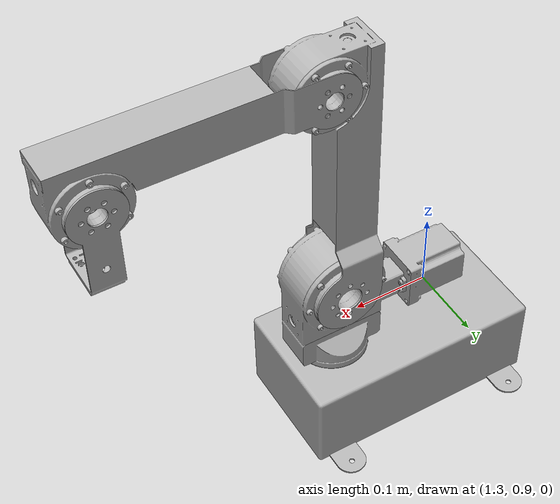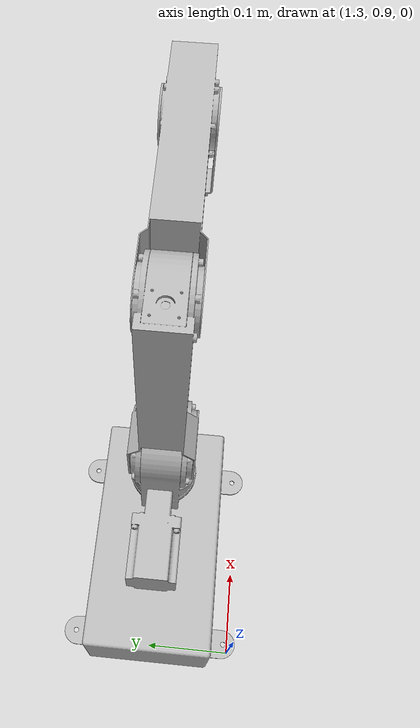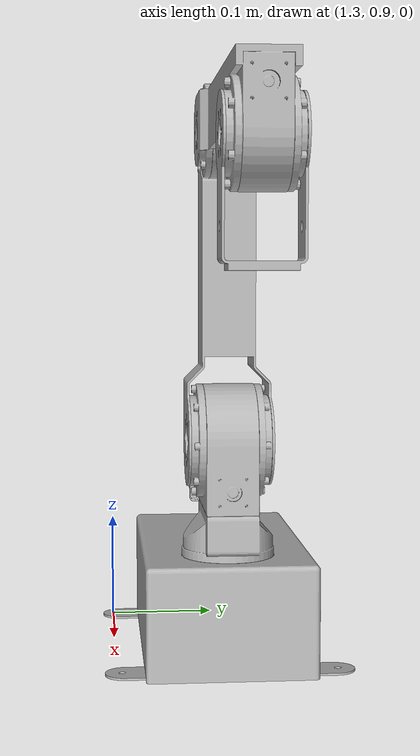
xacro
<?xml version="1.0"?>
<robot xmlns:xacro="http://www.ros.org/wiki/xacro"  name="robot">

    <!-- This is an example of a URDF. -->
    <!-- As we move through the file, new things to note will be pointed out. -->
    <!-- It's not meant an example of GOOD design, but an example of some of the various features of URDF/xacro. -->

    <!-- This will include all the contents of example_include.xacro first. Go check it out! -->
    <xacro:include filename="example_include.xacro" />
    <xacro:include filename="materials.xacro" />
    <xacro:include filename="PutArmiurdf.trans" />

    <!-- This first link called "world" is empty -->
    <link name="world"></link>

    <!-- A simple fixed joint from our empty world link, to our base. -->
    <!-- The base origin is offset from the world origin. -->
    <joint name="base_joint" type="fixed">
        <origin xyz="1.5 1.0 0" rpy="0 0 0"/>
        <parent link="world"/>
        <child link="base_link"/>
    </joint>

    <!-- base_link is a large rectangular plate. Some things to note: -->
    <!-- - We set the visual origin Z to half the box height, so that the link origin sits at the bottom of the box -->
    <!-- - We set the collision to be identical to the visual -->
    <!-- - We specified the colour manually (but still need to enter a name) -->
    <!-- - We specified all the inertial parameters manually -->
    <link name="base_link">
    <inertial>
        <origin xyz="-0.09564368830443622 0.0012112707272121106 0.05097667978773091" rpy="0 0 0"/>
        <mass value="27.331661890168725"/>
        <inertia ixx="0.076348" iyy="0.188917" izz="0.220203" ixy="-0.003157" iyz="-0.000445" ixz="-0.004204"/>
    </inertial>
    <visual>
        <origin xyz="0 0 0" rpy="0 0 0"/>
        <geometry>
        <mesh filename="package://urdf_example/meshes/base_link.stl" scale="0.001 0.001 0.001"/>
        </geometry>
        <material name="silver"/>
    </visual>
    <collision>
        <origin xyz="0 0 0" rpy="0 0 0"/>
        <geometry>
        <mesh filename="package://urdf_example/meshes/base_link.stl" scale="0.001 0.001 0.001"/>
        </geometry>
    </collision>
    </link>

    <!-- slider_joint lets slider_link move back and forth along the top of the base in one dimension.  -->
    <!-- - Origin is set to one of the top edges of the base_link box, so that our link skims across the top  -->
    <!-- - It moves along the X axis -->
    <!-- - We need to specify limits for the motion -->
    <joint name="slider_joint" type="continuous">
        <origin xyz="0.0 0.0 0.099" rpy="0 0 0"/>
        <parent link="base_link"/>
        <child link="slider_link"/>
        <axis xyz="0.0 0.0 -1.0"/>
    </joint>

    <!-- slider_link is the box skimming across the top of the base. Its parameters are similar to the base_link, however: -->
    <!-- - Instead of explicitly describing a colour, it uses the named material "blue". It knows about "blue" that material was included in example_include.xacro. -->
    <!-- - Instead of explicitly describing the inertia, we use a macro that was defined in the example_include.xacro -->

    <link name="slider_link">
    <inertial>
        <origin xyz="-0.026153794282260473 0.000241561861043143 0.0712127331449195" rpy="0 0 0"/>
        <mass value="7.902676304338557"/>
        <inertia ixx="0.013853" iyy="0.035493" izz="0.026352" ixy="2e-06" iyz="-4e-06" ixz="-0.001749"/>
    </inertial>
    <visual>
        <origin xyz="-0.0 -0.0 -0.099" rpy="0 0 0"/>
        <geometry>
        <mesh filename="package://urdf_example/meshes/1_AXIS_1_1.stl" scale="0.001 0.001 0.001"/>
        </geometry>
        <material name="silver"/>
    </visual>
    <collision>
        <origin xyz="-0.0 -0.0 -0.099" rpy="0 0 0"/>
        <geometry>
        <mesh filename="package://urdf_example/meshes/1_AXIS_1_1.stl" scale="0.001 0.001 0.001"/>
        </geometry>
    </collision>
    </link>

    <!-- arm_joint describes the rotation of the arm and is centred around the top corner of the slider box. -->
    <!-- - The axis of rotation is -1 in Y, so that positive is "up" -->
    <!-- - The upper limit uses xacro's mathematical features -->
    <joint name="arm_joint" type="continuous">
        <origin xyz="0.0 0.035 0.10275" rpy="0 0 0"/>
        <parent link="slider_link"/>
        <child link="arm_link"/>
        <axis xyz="0.0 1.0 0.0"/>
    </joint>

    <!-- arm_link describes the arm -->
    <!-- - We use the "property" feature to define the arm length and radius and use them multiple times -->
    <!-- - The visual/collision origin is set to halfway along the length (similar to the box), but also with a rotation (again using the mathematical features). -->
    <!--   This is because the cylinder extends along the Z axis by default, but we want it to be along the X axis (when the joint is at 0) -->

    <xacro:property name="arm_length" value="1" />
    <xacro:property name="arm_radius" value="0.1" />
    <link name="arm_link">
    <inertial>
        <origin xyz="-0.005668936335802665 -0.03475000001361264 0.2003768902953659" rpy="0 0 0"/>
        <mass value="5.606060961398385"/>
        <inertia ixx="0.033851" iyy="0.035534" izz="0.004268" ixy="0.0" iyz="0.0" ixz="-0.003135"/>
    </inertial>
    <visual>
        <origin xyz="-0.0 -0.035 -0.20175" rpy="0 0 0"/>
        <geometry>
        <mesh filename="package://urdf_example/meshes/2_AXIS_2_1.stl" scale="0.001 0.001 0.001"/>
        </geometry>
        <material name="silver"/>
    </visual>
    <collision>
        <origin xyz="-0.0 -0.035 -0.20175" rpy="0 0 0"/>
        <geometry>
        <mesh filename="package://urdf_example/meshes/2_AXIS_2_1.stl" scale="0.001 0.001 0.001"/>
        </geometry>
    </collision>
    </link>

    <!-- camera_joint describes where the camera is relative to the arm -->
    <!-- - Even though the camera isn't moving relative to the arm, it will probably be helpful to have its own link/frame rather than just adding more visuals to the arm -->
    <!-- - For this example, the camera_link origin will be at the centre of the camera's "sensor" -->
    <joint name="camera_joint" type="continuous">
        <origin xyz="0.01625 -0.00675 0.26953" rpy="0 0 0"/>
        <parent link="arm_link"/>
        <child link="camera_link"/>
        <axis xyz="-0.0 -1.0 -0.0"/>
    </joint>

    <!-- camera_link describes the camera at the end of the arm -->
    <!-- - It has multiple visual elements, which ultimately get combined together -->
    <!-- - Even if we specify different materials, RViz will just colour them all the same as the first -->
    <!-- - Although we could also specify multiple collision geometries, instead we just use a single box that encompasses the whole camera -->
    <link name="camera_link">
        <inertial>
            <origin xyz="0.18159959562223355 -0.02800000031186445 -0.004785398729074464" rpy="0 0 0"/>
            <mass value="5.029257545475572"/>
            <inertia ixx="0.003664" iyy="0.024688" izz="0.022977" ixy="0.0" iyz="-0.0" ixz="0.002776"/>
        </inertial>
        <visual>
            <origin xyz="-0.01625 -0.02825 -0.47128" rpy="0 0 0"/>
            <geometry>
                <mesh filename="package://urdf_example/meshes/3_AXIS_3_1.stl" scale="0.001 0.001 0.001"/>
            </geometry>
            <material name="silver"/>
        </visual>
        <collision>
            <origin xyz="-0.01625 -0.02825 -0.47128" rpy="0 0 0"/>
            <geometry>
                <mesh filename="package://urdf_example/meshes/3_AXIS_3_1.stl" scale="0.001 0.001 0.001"/>
            </geometry>
        </collision>
    </link>

    <xacro:include filename="example_gazebo.xacro" />

    <joint name="Revolute 4" type="continuous">
        <origin xyz="0.23869 0.0 -0.02525" rpy="0 0 0"/>
        <parent link="camera_link"/>
        <child link="4_AXIS_4_1"/>
        <axis xyz="0.0 1.0 0.0"/>
    </joint>

    <link name="4_AXIS_4_1">
        <inertial>
            <origin xyz="4.5630166312093934e-14 -0.028000000019999895 -0.04743354311576614" rpy="0 0 0"/>
            <mass value="0.20316593653715326"/>
            <inertia ixx="0.000474" iyy="0.000374" izz="0.000167" ixy="-0.0" iyz="0.0" ixz="0.0"/>
        </inertial>
        <visual>
            <origin xyz="-0.25494 -0.02825 -0.44603" rpy="0 0 0"/>
            <geometry>
                <mesh filename="package://urdf_example/meshes/4_AXIS_4_1.stl" scale="0.001 0.001 0.001"/>
            </geometry>
            <material name="silver"/>
        </visual>
        <collision>
            <origin xyz="-0.25494 -0.02825 -0.44603" rpy="0 0 0"/>
            <geometry>
                <mesh filename="package://urdf_example/meshes/4_AXIS_4_1.stl" scale="0.001 0.001 0.001"/>
            </geometry>
        </collision>
    </link>

</robot>

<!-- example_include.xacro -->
<robot xmlns:xacro="http://www.ros.org/wiki/xacro" >
    <!-- This file is not a robot in and of itself, it just contains some
         useful tags that could be included in any robot -->

    <!-- Specify some colours -->
    <material name="white">
        <color rgba="1 1 1 1"/>
    </material>

    <material name="orange">
        <color rgba="1 0.3 0.1 1"/>
    </material>

    <material name="blue">
        <color rgba="0.2 0.2 1 1"/>
    </material>

    <!-- Specify some standard inertial calculations
         https://en.wikipedia.org/wiki/List_of_moments_of_inertia
         These make use of xacro's mathematical functionality -->
    <xacro:macro name="inertial_sphere" params="mass radius *origin">
        <inertial>
            <xacro:insert_block name="origin"/>
            <mass value="${mass}" />
            <inertia ixx="${(2/5) * mass * (radius*radius)}" ixy="0.0" ixz="0.0"
                    iyy="${(2/5) * mass * (radius*radius)}" iyz="0.0"
                    izz="${(2/5) * mass * (radius*radius)}" />
        </inertial>
    </xacro:macro>

    <xacro:macro name="inertial_box" params="mass x y z *origin">
        <inertial>
            <xacro:insert_block name="origin"/>
            <mass value="${mass}" />
            <inertia ixx="${(1/12) * mass * (y*y+z*z)}" ixy="0.0" ixz="0.0"
                    iyy="${(1/12) * mass * (x*x+z*z)}" iyz="0.0"
                    izz="${(1/12) * mass * (x*x+y*y)}" />
        </inertial>
    </xacro:macro>

    <xacro:macro name="inertial_cylinder" params="mass length radius *origin">
        <inertial>
            <xacro:insert_block name="origin"/>
            <mass value="${mass}" />
            <inertia ixx="${(1/12) * mass * (3*radius*radius + length*length)}"
                ixy="0.0" ixz="0.0"
                iyy="${(1/12) * mass * (3*radius*radius + length*length)}"
                iyz="0.0" izz="${(1/2) * mass * (radius*radius)}" />
        </inertial>
    </xacro:macro>
</robot>

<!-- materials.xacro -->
<robot name="PutArmiurdf" xmlns:xacro="http://www.ros.org/wiki/xacro" >

<material name="silver">
  <color rgba="0.700 0.700 0.700 1.000"/>
</material>

</robot>
